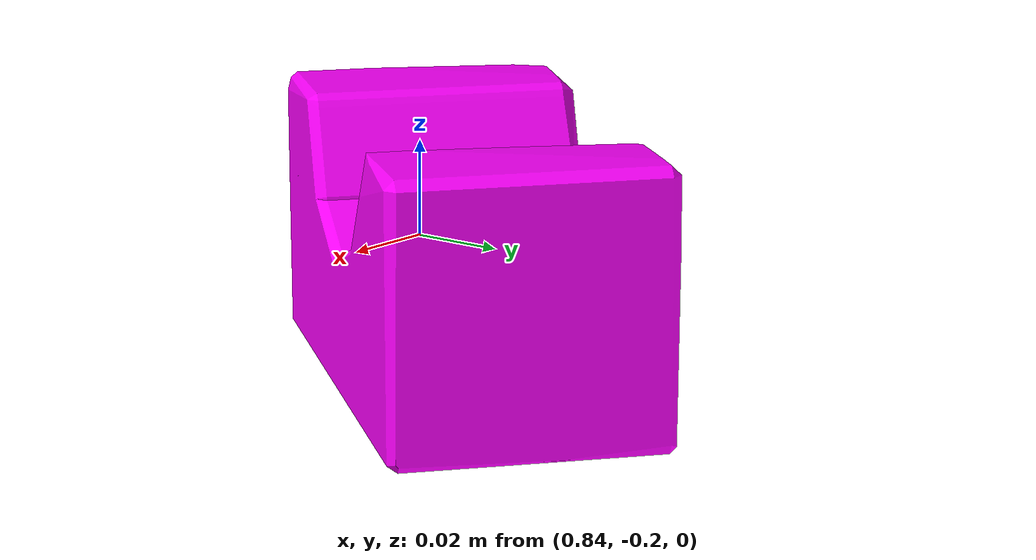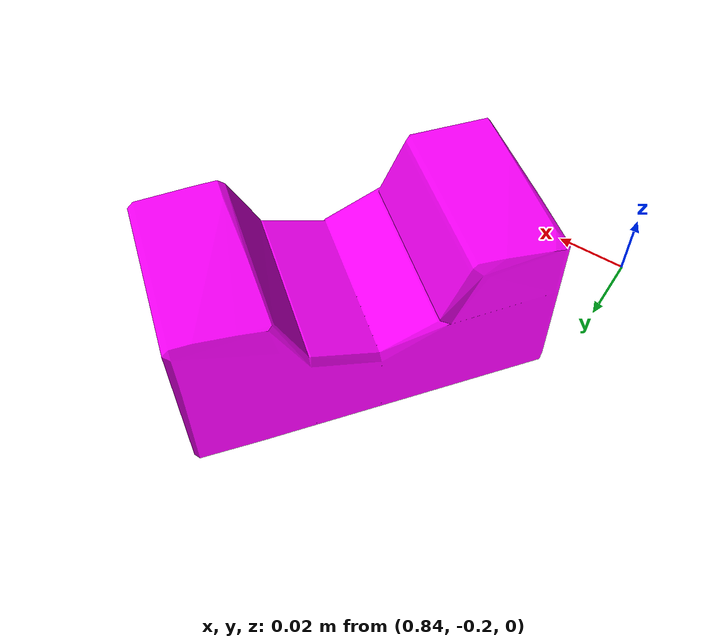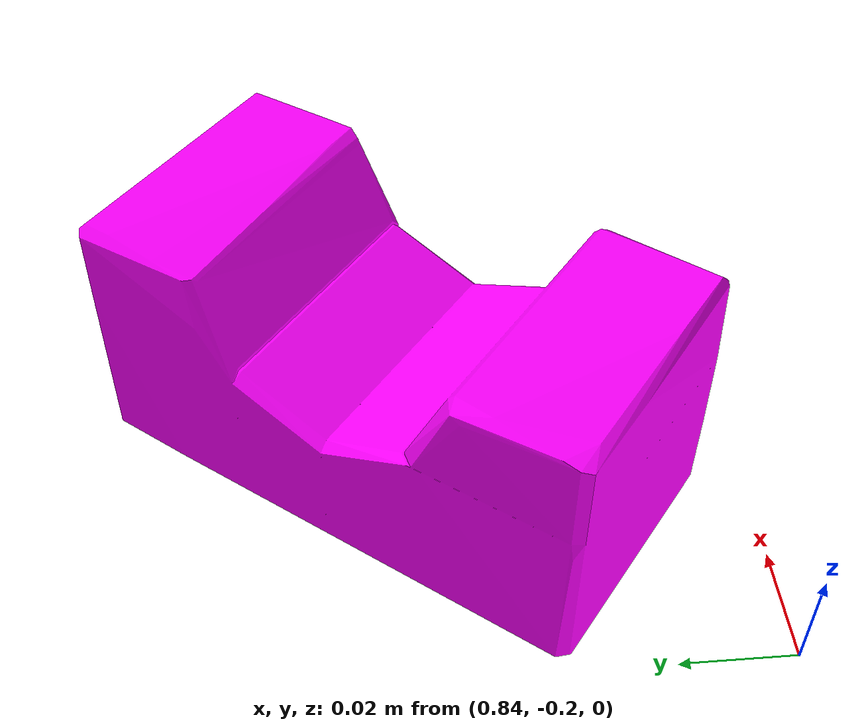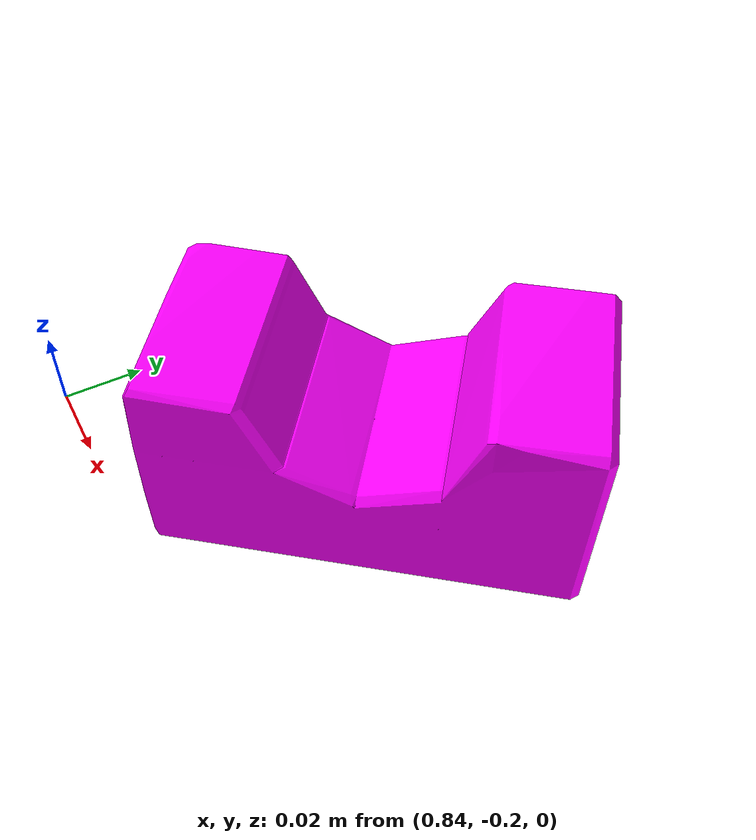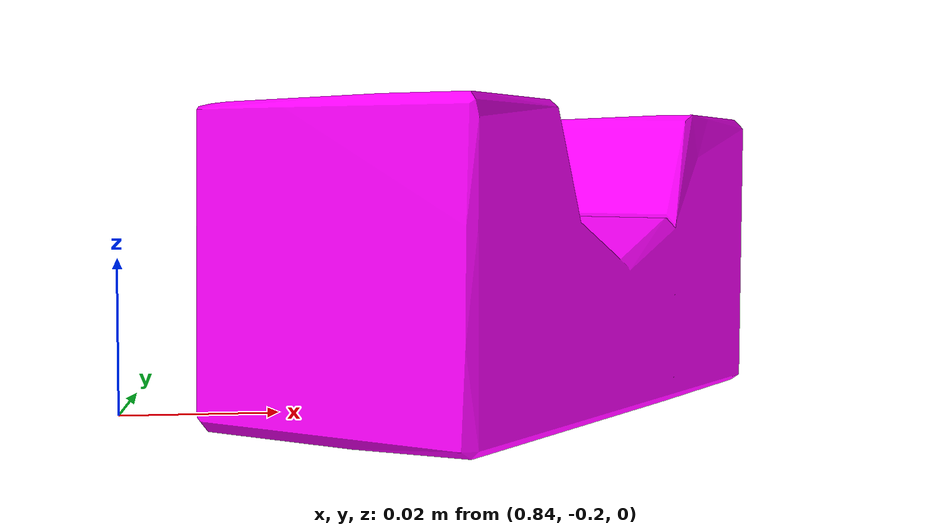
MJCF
<mujoco model="rnd_1">
    <compiler angle="radian" meshdir="."/>
    <size njmax="500" nconmax="100" />
    <asset>
        <mesh name="1_vhacd" file="1_vhacd.stl" />
    </asset>
    <worldbody>
        <body name="shape_run_000_it_000002" pos="0.897273081560376 -0.1392806083490565 0.016533514572172604" quat="0.6390307789221074 0.30951831174371547 -0.6336120574779102 0.3072032534074707">
            <freejoint name="1:joint" />
            <geom quat="0.707107 0 -0.707107 0" rgba="1 0 1 1" mesh="1_vhacd" type="mesh" solimp="0.998 0.998 0.001" solref="0.001 1" density="50" friction="0.95 0.3 0.1" condim="4"/>
        </body>
    </worldbody>
</mujoco>
